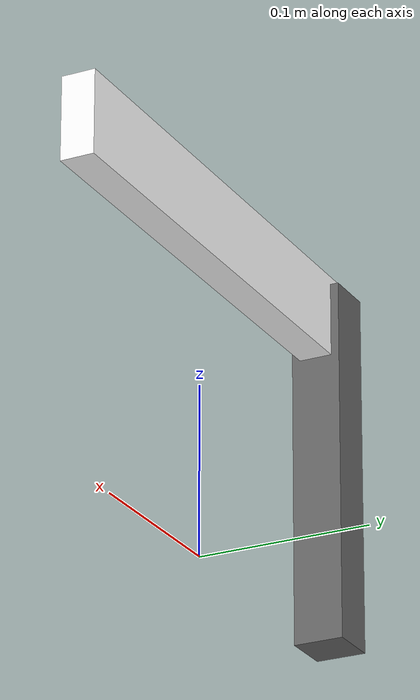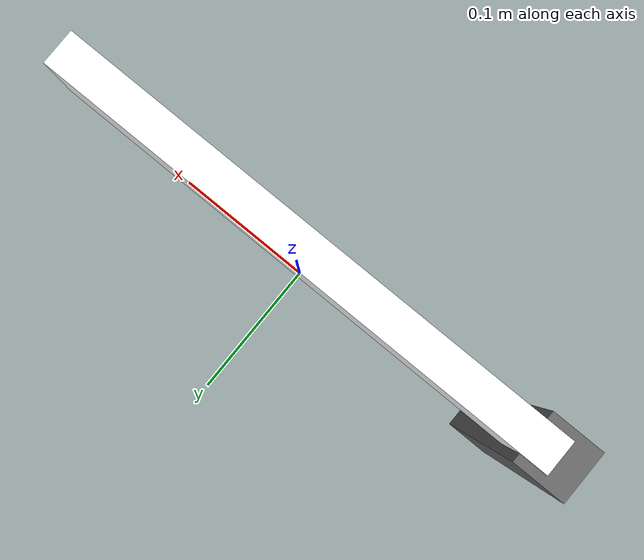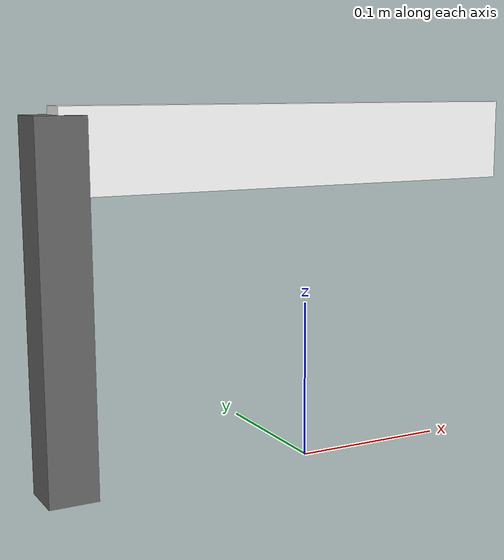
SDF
<?xml version="1.0" ?>
<sdf version="1.10">
  <model name="autorace_level_bar">
    <link name="post">
      <pose>-0.16 0 0.11 0 0 0</pose>
      <collision name="collision">
        <geometry><box><size>0.03 0.03 0.22</size></box></geometry>
      </collision>
      <visual name="visual">
        <geometry><box><size>0.03 0.03 0.22</size></box></geometry>
        <material>
          <ambient>0.3 0.3 0.3 1</ambient>
          <diffuse>0.4 0.4 0.4 1</diffuse>
        </material>
      </visual>
    </link>

    <joint name="post_fixed" type="fixed">
      <parent>world</parent>
      <child>post</child>
    </joint>

    <link name="bar">
      <!-- Link origin sits on the hinge; the bar itself extends towards +x. -->
      <pose>-0.16 0 0.2 0 0 0</pose>
      <inertial>
        <pose>0.15 0 0 0 0 0</pose>
        <mass>0.05</mass>
        <inertia><ixx>1e-4</ixx><iyy>1e-3</iyy><izz>1e-3</izz>
          <ixy>0</ixy><ixz>0</ixz><iyz>0</iyz></inertia>
      </inertial>
      <collision name="collision">
        <pose>0.15 0 0 0 0 0</pose>
        <geometry><box><size>0.3 0.02 0.05</size></box></geometry>
      </collision>
      <visual name="visual">
        <pose>0.15 0 0 0 0 0</pose>
        <geometry><box><size>0.3 0.02 0.05</size></box></geometry>
        <material>
          <diffuse>1 1 1 1</diffuse>
          <pbr>
            <metal>
              <albedo_map>model://autorace_level_bar/materials/textures/traffic_bar.png</albedo_map>
              <metalness>0.0</metalness>
              <roughness>0.9</roughness>
            </metal>
          </pbr>
        </material>
      </visual>
    </link>

    <joint name="bar_joint" type="revolute">
      <parent>post</parent>
      <child>bar</child>
      <axis>
        <xyz>0 -1 0</xyz>
        <limit><lower>0.0</lower><upper>1.5708</upper>
          <effort>10</effort><velocity>2.0</velocity></limit>
        <dynamics><damping>0.2</damping></dynamics>
      </axis>
    </joint>

    <plugin filename="gz-sim-joint-position-controller-system"
            name="gz::sim::systems::JointPositionController">
      <joint_name>bar_joint</joint_name>
      <topic>/level_bar/cmd</topic>
      <p_gain>5.0</p_gain>
      <i_gain>0.05</i_gain>
      <d_gain>0.5</d_gain>
    </plugin>
  </model>
</sdf>
